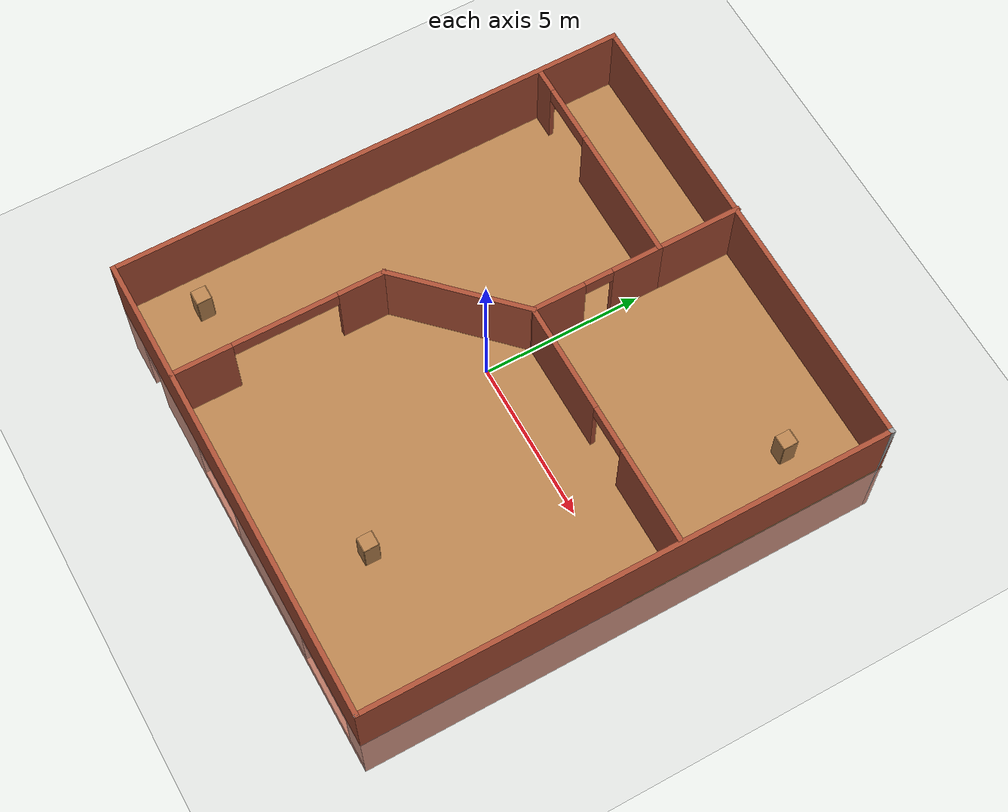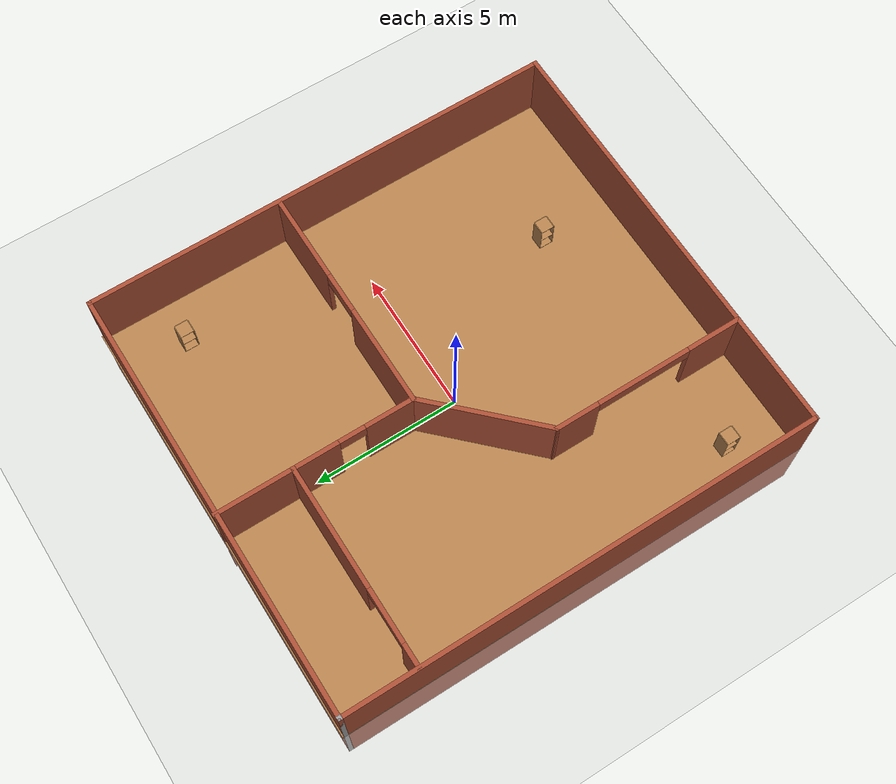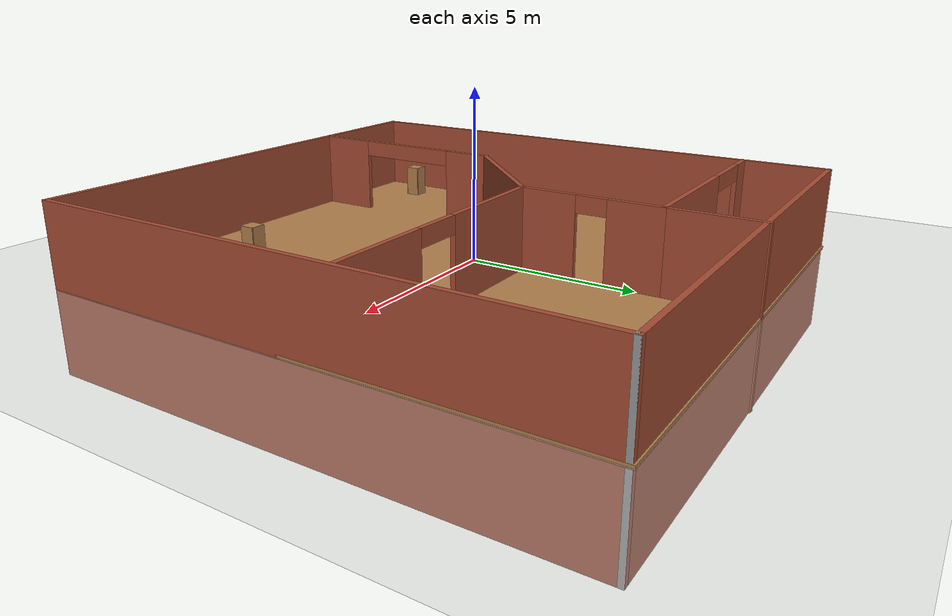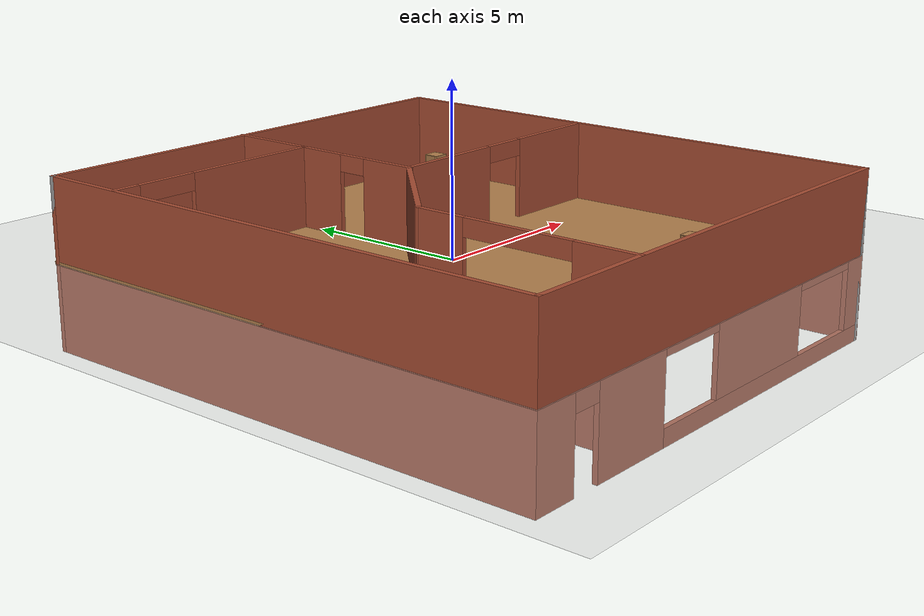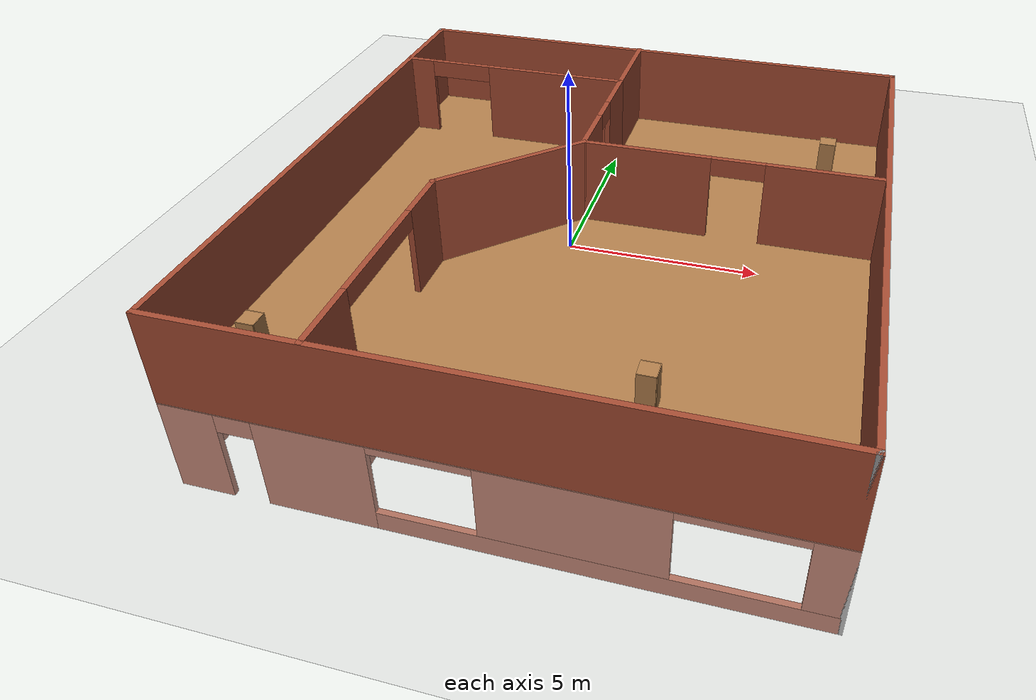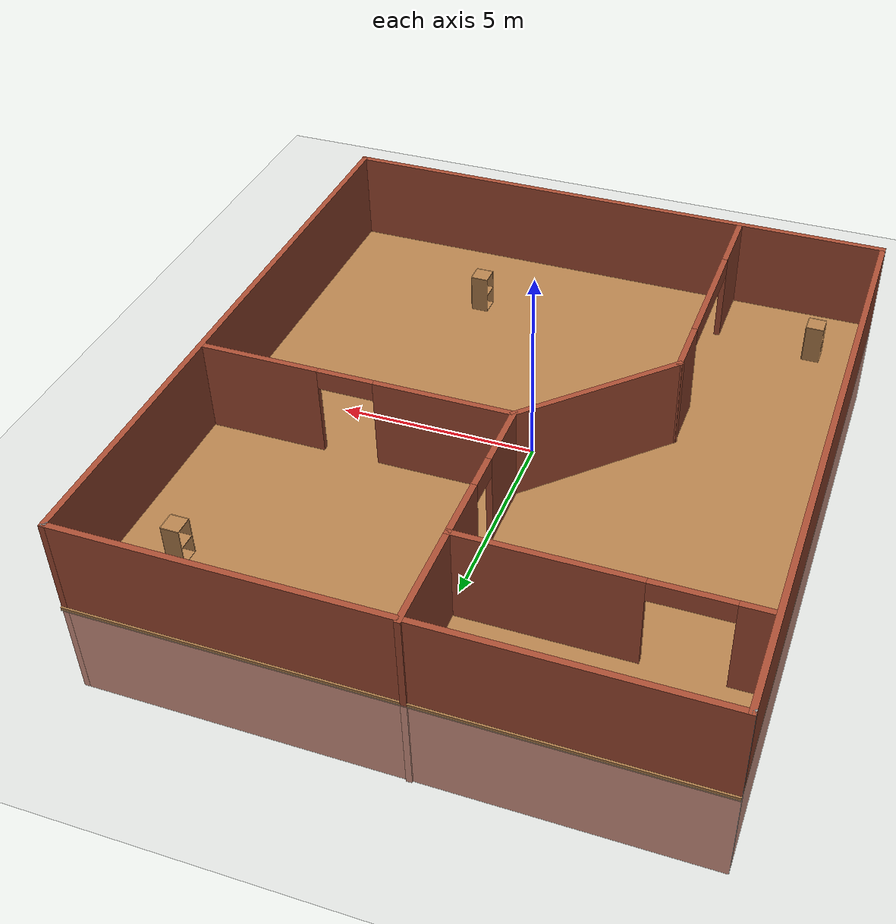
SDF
<sdf version="1.6">
 <world name="default">
  <light name="sun" type="directional">
   <pose>0 0 10 0 -0 0</pose>
   <diffuse>0.8 0.8 0.8 1</diffuse>
   <specular>0.2 0.2 0.2 1</specular>
   <attenuation>
    <range>1000</range>
    <constant>0.9</constant>
    <linear>0.01</linear>
    <quadratic>0.001</quadratic>
   </attenuation>
   <direction>-0.5 0.1 -0.9</direction>
  </light>
  <model name="ground_plane">
   <pose>0 0 -0.05 0 -0 0</pose>
   <static>1</static>
   <link name="link">
    <collision name="collision">
     <geometry><plane><normal>0 0 1</normal><size>100 100</size></plane></geometry>
     <surface>
      <contact><collide_bitmask>65535</collide_bitmask></contact>
      <friction><ode><mu>100</mu><mu2>50</mu2></ode></friction>
     </surface>
    </collision>
    <visual name="visual">
     <cast_shadows>0</cast_shadows>
     <geometry><plane><normal>0 0 1</normal><size>100 100</size></plane></geometry>
     <material>
      <script><uri>file://media/materials/scripts/gazebo.material</uri><name>Gazebo/Grey</name></script>
     </material>
    </visual>
   </link>
  </model>
  <gravity>0 0 -9.8</gravity>
  <magnetic_field>6e-06 2.3e-05 -4.2e-05</magnetic_field>
  <atmosphere type="adiabatic"/>
  <physics name="default_physics" default="0" type="ode">
   <max_step_size>0.001</max_step_size>
   <real_time_factor>1</real_time_factor>
   <real_time_update_rate>1000</real_time_update_rate>
  </physics>
  <scene><ambient>0.4 0.4 0.4 1</ambient><background>0.7 0.7 0.7 1</background><shadows>1</shadows></scene>
  <audio><device>default</device></audio>
  <spherical_coordinates>
   <surface_model>EARTH_WGS84</surface_model>
   <latitude_deg>0</latitude_deg>
   <longitude_deg>0</longitude_deg>
   <elevation>0</elevation>
   <heading_deg>0</heading_deg>
  </spherical_coordinates>
  <model name="RoboticsTrainHome">
   <pose>0.487938 0.029114 -2.6 0 -0 0</pose>
   <link name="Floor_0">
    <collision name="Floor_0_Collision">
     <geometry><box><size>15 16.5445 0.1</size></box></geometry>
     <pose>0 0 0.05 0 -0 0</pose>
    </collision>
    <visual name="Floor_0_Visual">
     <pose>0 0 0.05 0 -0 0</pose>
     <geometry><box><size>15 16.5445 0.1</size></box></geometry>
     <material>
      <script><uri>file://media/materials/scripts/gazebo.material</uri><name>Gazebo/Wood</name></script>
      <ambient>1 1 1 1</ambient>
     </material>
     <meta><layer>1</layer></meta>
    </visual>
    <pose>0 0 2.5 0 -0 0</pose>
   </link>
   <link name="Wall_10">
    <collision name="Wall_10_Collision">
     <geometry><box><size>0.15 0.15 2.5</size></box></geometry>
     <pose>0 0 1.25 0 -0 0</pose>
    </collision>
    <visual name="Wall_10_Visual">
     <pose>0 0 1.25 0 -0 0</pose>
     <geometry><box><size>0.15 0.15 2.5</size></box></geometry>
     <material>
      <script><uri>file://media/materials/scripts/gazebo.material</uri><name>Gazebo/Grey</name></script>
      <ambient>1 1 1 1</ambient>
     </material>
     <meta><layer>0</layer></meta>
    </visual>
    <pose>-7.425 8.15273 0 0 -0 0</pose>
   </link>
   <link name="Wall_11">
    <collision name="Wall_11_Collision">
     <geometry><box><size>16.5 0.15 2.5</size></box></geometry>
     <pose>0 0 1.25 0 -0 0</pose>
    </collision>
    <visual name="Wall_11_Visual">
     <pose>0 0 1.25 0 -0 0</pose>
     <geometry><box><size>16.5 0.15 2.5</size></box></geometry>
     <material>
      <script><uri>file://media/materials/scripts/gazebo.material</uri><name>Gazebo/Bricks</name></script>
      <ambient>1 1 1 1</ambient>
     </material>
     <meta><layer>0</layer></meta>
    </visual>
    <pose>-7.425 -0.022267 0 0 -0 -1.5708</pose>
   </link>
   <link name="Wall_13">
    <collision name="Wall_13_Collision">
     <geometry><box><size>2.75 0.15 2.5</size></box></geometry>
     <pose>0 0 1.25 0 -0 0</pose>
    </collision>
    <visual name="Wall_13_Visual">
     <pose>0 0 1.25 0 -0 0</pose>
     <geometry><box><size>2.75 0.15 2.5</size></box></geometry>
     <material>
      <script><uri>file://media/materials/scripts/gazebo.material</uri><name>Gazebo/Bricks</name></script>
      <ambient>1 1 1 1</ambient>
     </material>
     <meta><layer>0</layer></meta>
    </visual>
    <pose>-0.537233 6.89727 0 0 -0 -1.5708</pose>
   </link>
   <link name="Wall_20">
    <pose>-3.96223 5.59727 0 0 -0 3.14159</pose>
    <visual name="Wall_20_Visual_0">
     <pose>-0.811385 0 1.25 0 -0 0</pose>
     <geometry><box><size>5.37723 0.15 2.5</size></box></geometry>
     <material>
      <script><uri>file://media/materials/scripts/gazebo.material</uri><name>Gazebo/Bricks</name></script>
      <ambient>1 1 1 1</ambient>
     </material>
     <meta><layer>0</layer></meta>
    </visual>
    <collision name="Wall_20_Collision_0">
     <geometry><box><size>5.37723 0.15 2.5</size></box></geometry>
     <pose>-0.811385 0 1.25 0 -0 0</pose>
    </collision>
    <visual name="Wall_20_Visual_1">
     <pose>3.13862 0 1.25 0 -0 0</pose>
     <geometry><box><size>0.722771 0.15 2.5</size></box></geometry>
     <material>
      <script><uri>file://media/materials/scripts/gazebo.material</uri><name>Gazebo/Bricks</name></script>
      <ambient>1 1 1 1</ambient>
     </material>
     <meta><layer>0</layer></meta>
    </visual>
    <collision name="Wall_20_Collision_1">
     <geometry><box><size>0.722771 0.15 2.5</size></box></geometry>
     <pose>3.13862 0 1.25 0 -0 0</pose>
    </collision>
    <visual name="Wall_20_Visual_2">
     <pose>2.32723 0 2.25 0 -0 0</pose>
     <geometry><box><size>0.9 0.15 0.5</size></box></geometry>
     <material>
      <script><uri>file://media/materials/scripts/gazebo.material</uri><name>Gazebo/Bricks</name></script>
      <ambient>1 1 1 1</ambient>
     </material>
     <meta><layer>0</layer></meta>
    </visual>
    <collision name="Wall_20_Collision_2">
     <geometry><box><size>0.9 0.15 0.5</size></box></geometry>
     <pose>2.32723 0 2.25 0 -0 0</pose>
    </collision>
   </link>
   <link name="Wall_22">
    <pose>-0.537233 3.54727 0 0 -0 -1.5708</pose>
    <visual name="Wall_22_Visual_0">
     <pose>-0.760545 0 1.25 0 -0 0</pose>
     <geometry><box><size>2.72891 0.15 2.5</size></box></geometry>
     <material>
      <script><uri>file://media/materials/scripts/gazebo.material</uri><name>Gazebo/Bricks</name></script>
      <ambient>1 1 1 1</ambient>
     </material>
     <meta><layer>0</layer></meta>
    </visual>
    <collision name="Wall_22_Collision_0">
     <geometry><box><size>2.72891 0.15 2.5</size></box></geometry>
     <pose>-0.760545 0 1.25 0 -0 0</pose>
    </collision>
    <visual name="Wall_22_Visual_1">
     <pose>1.81445 0 1.25 0 -0 0</pose>
     <geometry><box><size>0.62109 0.15 2.5</size></box></geometry>
     <material>
      <script><uri>file://media/materials/scripts/gazebo.material</uri><name>Gazebo/Bricks</name></script>
      <ambient>1 1 1 1</ambient>
     </material>
     <meta><layer>0</layer></meta>
    </visual>
    <collision name="Wall_22_Collision_1">
     <geometry><box><size>0.62109 0.15 2.5</size></box></geometry>
     <pose>1.81445 0 1.25 0 -0 0</pose>
    </collision>
    <visual name="Wall_22_Visual_2">
     <pose>1.05391 0 2.25 0 -0 0</pose>
     <geometry><box><size>0.9 0.15 0.5</size></box></geometry>
     <material>
      <script><uri>file://media/materials/scripts/gazebo.material</uri><name>Gazebo/Bricks</name></script>
      <ambient>1 1 1 1</ambient>
     </material>
     <meta><layer>0</layer></meta>
    </visual>
    <collision name="Wall_22_Collision_2">
     <geometry><box><size>0.9 0.15 0.5</size></box></geometry>
     <pose>1.05391 0 2.25 0 -0 0</pose>
    </collision>
   </link>
   <link name="Wall_23">
    <collision name="Wall_23_Collision">
     <geometry><box><size>8 0.15 2.5</size></box></geometry>
     <pose>0 0 1.25 0 -0 0</pose>
    </collision>
    <visual name="Wall_23_Visual">
     <pose>0 0 1.25 0 -0 0</pose>
     <geometry><box><size>8 0.15 2.5</size></box></geometry>
     <material>
      <script><uri>file://media/materials/scripts/gazebo.material</uri><name>Gazebo/Bricks</name></script>
      <ambient>1 1 1 1</ambient>
     </material>
     <meta><layer>0</layer></meta>
    </visual>
    <pose>3.38777 1.49727 0 0 -0 0</pose>
   </link>
   <link name="Wall_25">
    <collision name="Wall_25_Collision">
     <geometry><box><size>4.5 0.15 2.5</size></box></geometry>
     <pose>0 0 1.25 0 -0 0</pose>
    </collision>
    <visual name="Wall_25_Visual">
     <pose>0 0 1.25 0 -0 0</pose>
     <geometry><box><size>4.5 0.15 2.5</size></box></geometry>
     <material>
      <script><uri>file://media/materials/scripts/gazebo.material</uri><name>Gazebo/Bricks</name></script>
      <ambient>1 1 1 1</ambient>
     </material>
     <meta><layer>0</layer></meta>
    </visual>
    <pose>-2.07519 -0.040689 0 0 -0 -2.35619</pose>
   </link>
   <link name="Wall_26">
    <pose>-3.61315 -4.87865 0 0 -0 -1.5708</pose>
    <visual name="Wall_26_Visual_0">
     <pose>-1.95738 0 1.25 0 -0 0</pose>
     <geometry><box><size>2.83524 0.15 2.5</size></box></geometry>
     <material>
      <script><uri>file://media/materials/scripts/gazebo.material</uri><name>Gazebo/Bricks</name></script>
      <ambient>1 1 1 1</ambient>
     </material>
     <meta><layer>0</layer></meta>
    </visual>
    <collision name="Wall_26_Collision_0">
     <geometry><box><size>2.83524 0.15 2.5</size></box></geometry>
     <pose>-1.95738 0 1.25 0 -0 0</pose>
    </collision>
    <visual name="Wall_26_Visual_1">
     <pose>1.86762 0 1.25 0 -0 0</pose>
     <geometry><box><size>3.01476 0.15 2.5</size></box></geometry>
     <material>
      <script><uri>file://media/materials/scripts/gazebo.material</uri><name>Gazebo/Bricks</name></script>
      <ambient>1 1 1 1</ambient>
     </material>
     <meta><layer>0</layer></meta>
    </visual>
    <collision name="Wall_26_Collision_1">
     <geometry><box><size>3.01476 0.15 2.5</size></box></geometry>
     <pose>1.86762 0 1.25 0 -0 0</pose>
    </collision>
    <visual name="Wall_26_Visual_2">
     <pose>-0.089756 0 2.25 0 -0 0</pose>
     <geometry><box><size>0.9 0.15 0.5</size></box></geometry>
     <material>
      <script><uri>file://media/materials/scripts/gazebo.material</uri><name>Gazebo/Bricks</name></script>
      <ambient>1 1 1 1</ambient>
     </material>
     <meta><layer>0</layer></meta>
    </visual>
    <collision name="Wall_26_Collision_2">
     <geometry><box><size>0.9 0.15 0.5</size></box></geometry>
     <pose>-0.089756 0 2.25 0 -0 0</pose>
    </collision>
   </link>
   <link name="Wall_28">
    <collision name="Wall_28_Collision">
     <geometry><box><size>15 0.15 2.5</size></box></geometry>
     <pose>0 0 1.25 0 -0 0</pose>
    </collision>
    <visual name="Wall_28_Visual">
     <pose>0 0 1.25 0 -0 0</pose>
     <geometry><box><size>15 0.15 2.5</size></box></geometry>
     <material>
      <script><uri>file://media/materials/scripts/gazebo.material</uri><name>Gazebo/Bricks</name></script>
      <ambient>1 1 1 1</ambient>
     </material>
     <meta><layer>1</layer></meta>
    </visual>
    <pose>0 -8.19727 2.5 0 -0 0</pose>
   </link>
   <link name="Wall_29">
    <collision name="Wall_29_Collision">
     <geometry><box><size>0.15 0.15 2.5</size></box></geometry>
     <pose>0 0 1.25 0 -0 0</pose>
    </collision>
    <visual name="Wall_29_Visual">
     <pose>0 0 1.25 0 -0 0</pose>
     <geometry><box><size>0.15 0.15 2.5</size></box></geometry>
     <material>
      <script><uri>file://media/materials/scripts/gazebo.material</uri><name>Gazebo/Grey</name></script>
      <ambient>1 1 1 1</ambient>
     </material>
     <meta><layer>1</layer></meta>
    </visual>
    <pose>7.425 -8.19727 2.5 0 -0 0</pose>
   </link>
   <link name="Wall_30">
    <collision name="Wall_30_Collision">
     <geometry><box><size>16.5 0.15 2.5</size></box></geometry>
     <pose>0 0 1.25 0 -0 0</pose>
    </collision>
    <visual name="Wall_30_Visual">
     <pose>0 0 1.25 0 -0 0</pose>
     <geometry><box><size>16.5 0.15 2.5</size></box></geometry>
     <material>
      <script><uri>file://media/materials/scripts/gazebo.material</uri><name>Gazebo/Bricks</name></script>
      <ambient>1 1 1 1</ambient>
     </material>
     <meta><layer>1</layer></meta>
    </visual>
    <pose>7.425 -0.022267 2.5 0 -0 1.5708</pose>
   </link>
   <link name="Wall_31">
    <collision name="Wall_31_Collision">
     <geometry><box><size>0.15 0.15 2.5</size></box></geometry>
     <pose>0 0 1.25 0 -0 0</pose>
    </collision>
    <visual name="Wall_31_Visual">
     <pose>0 0 1.25 0 -0 0</pose>
     <geometry><box><size>0.15 0.15 2.5</size></box></geometry>
     <material>
      <script><uri>file://media/materials/scripts/gazebo.material</uri><name>Gazebo/Grey</name></script>
      <ambient>1 1 1 1</ambient>
     </material>
     <meta><layer>1</layer></meta>
    </visual>
    <pose>7.425 8.15273 2.5 0 -0 0</pose>
   </link>
   <link name="Wall_32">
    <collision name="Wall_32_Collision">
     <geometry><box><size>15 0.15 2.5</size></box></geometry>
     <pose>0 0 1.25 0 -0 0</pose>
    </collision>
    <visual name="Wall_32_Visual">
     <pose>0 0 1.25 0 -0 0</pose>
     <geometry><box><size>15 0.15 2.5</size></box></geometry>
     <material>
      <script><uri>file://media/materials/scripts/gazebo.material</uri><name>Gazebo/Bricks</name></script>
      <ambient>1 1 1 1</ambient>
     </material>
     <meta><layer>1</layer></meta>
    </visual>
    <pose>0 8.15273 2.5 0 -0 3.14159</pose>
   </link>
   <link name="Wall_33">
    <collision name="Wall_33_Collision">
     <geometry><box><size>0.15 0.15 2.5</size></box></geometry>
     <pose>0 0 1.25 0 -0 0</pose>
    </collision>
    <visual name="Wall_33_Visual">
     <pose>0 0 1.25 0 -0 0</pose>
     <geometry><box><size>0.15 0.15 2.5</size></box></geometry>
     <material>
      <script><uri>file://media/materials/scripts/gazebo.material</uri><name>Gazebo/Grey</name></script>
      <ambient>1 1 1 1</ambient>
     </material>
     <meta><layer>1</layer></meta>
    </visual>
    <pose>-7.425 8.15273 2.5 0 -0 0</pose>
   </link>
   <link name="Wall_34">
    <collision name="Wall_34_Collision">
     <geometry><box><size>16.5 0.15 2.5</size></box></geometry>
     <pose>0 0 1.25 0 -0 0</pose>
    </collision>
    <visual name="Wall_34_Visual">
     <pose>0 0 1.25 0 -0 0</pose>
     <geometry><box><size>16.5 0.15 2.5</size></box></geometry>
     <material>
      <script><uri>file://media/materials/scripts/gazebo.material</uri><name>Gazebo/Bricks</name></script>
      <ambient>1 1 1 1</ambient>
     </material>
     <meta><layer>1</layer></meta>
    </visual>
    <pose>-7.425 -0.022267 2.5 0 -0 -1.5708</pose>
   </link>
   <link name="Wall_35">
    <collision name="Wall_35_Collision">
     <geometry><box><size>2.75 0.15 2.5</size></box></geometry>
     <pose>0 0 1.25 0 -0 0</pose>
    </collision>
    <visual name="Wall_35_Visual">
     <pose>0 0 1.25 0 -0 0</pose>
     <geometry><box><size>2.75 0.15 2.5</size></box></geometry>
     <material>
      <script><uri>file://media/materials/scripts/gazebo.material</uri><name>Gazebo/Bricks</name></script>
      <ambient>1 1 1 1</ambient>
     </material>
     <meta><layer>1</layer></meta>
    </visual>
    <pose>-0.537233 6.89727 2.5 0 -0 -1.5708</pose>
   </link>
   <link name="Wall_36">
    <pose>-3.96223 5.59727 2.5 0 -0 3.14159</pose>
    <visual name="Wall_36_Visual_0">
     <pose>-1.35419 0 1.25 0 -0 0</pose>
     <geometry><box><size>4.29162 0.15 2.5</size></box></geometry>
     <material>
      <script><uri>file://media/materials/scripts/gazebo.material</uri><name>Gazebo/Bricks</name></script>
      <ambient>1 1 1 1</ambient>
     </material>
     <meta><layer>1</layer></meta>
    </visual>
    <collision name="Wall_36_Collision_0">
     <geometry><box><size>4.29162 0.15 2.5</size></box></geometry>
     <pose>-1.35419 0 1.25 0 -0 0</pose>
    </collision>
    <visual name="Wall_36_Visual_1">
     <pose>3.07617 0 1.25 0 -0 0</pose>
     <geometry><box><size>0.847664 0.15 2.5</size></box></geometry>
     <material>
      <script><uri>file://media/materials/scripts/gazebo.material</uri><name>Gazebo/Bricks</name></script>
      <ambient>1 1 1 1</ambient>
     </material>
     <meta><layer>1</layer></meta>
    </visual>
    <collision name="Wall_36_Collision_1">
     <geometry><box><size>0.847664 0.15 2.5</size></box></geometry>
     <pose>3.07617 0 1.25 0 -0 0</pose>
    </collision>
    <visual name="Wall_36_Visual_2">
     <pose>1.72198 0 2.25 0 -0 0</pose>
     <geometry><box><size>1.86072 0.15 0.5</size></box></geometry>
     <material>
      <script><uri>file://media/materials/scripts/gazebo.material</uri><name>Gazebo/Bricks</name></script>
      <ambient>1 1 1 1</ambient>
     </material>
     <meta><layer>1</layer></meta>
    </visual>
    <collision name="Wall_36_Collision_2">
     <geometry><box><size>1.86072 0.15 0.5</size></box></geometry>
     <pose>1.72198 0 2.25 0 -0 0</pose>
    </collision>
   </link>
   <link name="Wall_37">
    <pose>-0.537233 3.54727 2.5 0 -0 -1.5708</pose>
    <visual name="Wall_37_Visual_0">
     <pose>-1.31776 0 1.25 0 -0 0</pose>
     <geometry><box><size>1.61448 0.15 2.5</size></box></geometry>
     <material>
      <script><uri>file://media/materials/scripts/gazebo.material</uri><name>Gazebo/Bricks</name></script>
      <ambient>1 1 1 1</ambient>
     </material>
     <meta><layer>1</layer></meta>
    </visual>
    <collision name="Wall_37_Collision_0">
     <geometry><box><size>1.61448 0.15 2.5</size></box></geometry>
     <pose>-1.31776 0 1.25 0 -0 0</pose>
    </collision>
    <visual name="Wall_37_Visual_1">
     <pose>1.25724 0 1.25 0 -0 0</pose>
     <geometry><box><size>1.73552 0.15 2.5</size></box></geometry>
     <material>
      <script><uri>file://media/materials/scripts/gazebo.material</uri><name>Gazebo/Bricks</name></script>
      <ambient>1 1 1 1</ambient>
     </material>
     <meta><layer>1</layer></meta>
    </visual>
    <collision name="Wall_37_Collision_1">
     <geometry><box><size>1.73552 0.15 2.5</size></box></geometry>
     <pose>1.25724 0 1.25 0 -0 0</pose>
    </collision>
    <visual name="Wall_37_Visual_2">
     <pose>-0.060524 0 2.25 0 -0 0</pose>
     <geometry><box><size>0.9 0.15 0.5</size></box></geometry>
     <material>
      <script><uri>file://media/materials/scripts/gazebo.material</uri><name>Gazebo/Bricks</name></script>
      <ambient>1 1 1 1</ambient>
     </material>
     <meta><layer>1</layer></meta>
    </visual>
    <collision name="Wall_37_Collision_2">
     <geometry><box><size>0.9 0.15 0.5</size></box></geometry>
     <pose>-0.060524 0 2.25 0 -0 0</pose>
    </collision>
   </link>
   <link name="Wall_38">
    <pose>3.38777 1.49727 2.5 0 -0 0</pose>
    <visual name="Wall_38_Visual_0">
     <pose>-2.2312 0 1.25 0 -0 0</pose>
     <geometry><box><size>3.5376 0.15 2.5</size></box></geometry>
     <material>
      <script><uri>file://media/materials/scripts/gazebo.material</uri><name>Gazebo/Bricks</name></script>
      <ambient>1 1 1 1</ambient>
     </material>
     <meta><layer>1</layer></meta>
    </visual>
    <collision name="Wall_38_Collision_0">
     <geometry><box><size>3.5376 0.15 2.5</size></box></geometry>
     <pose>-2.2312 0 1.25 0 -0 0</pose>
    </collision>
    <visual name="Wall_38_Visual_1">
     <pose>2.47819 0 1.25 0 -0 0</pose>
     <geometry><box><size>3.04361 0.15 2.5</size></box></geometry>
     <material>
      <script><uri>file://media/materials/scripts/gazebo.material</uri><name>Gazebo/Bricks</name></script>
      <ambient>1 1 1 1</ambient>
     </material>
     <meta><layer>1</layer></meta>
    </visual>
    <collision name="Wall_38_Collision_1">
     <geometry><box><size>3.04361 0.15 2.5</size></box></geometry>
     <pose>2.47819 0 1.25 0 -0 0</pose>
    </collision>
    <visual name="Wall_38_Visual_2">
     <pose>0.246996 0 2.25 0 -0 0</pose>
     <geometry><box><size>1.41879 0.15 0.5</size></box></geometry>
     <material>
      <script><uri>file://media/materials/scripts/gazebo.material</uri><name>Gazebo/Bricks</name></script>
      <ambient>1 1 1 1</ambient>
     </material>
     <meta><layer>1</layer></meta>
    </visual>
    <collision name="Wall_38_Collision_2">
     <geometry><box><size>1.41879 0.15 0.5</size></box></geometry>
     <pose>0.246996 0 2.25 0 -0 0</pose>
    </collision>
   </link>
   <link name="Wall_39">
    <collision name="Wall_39_Collision">
     <geometry><box><size>4.5 0.15 2.5</size></box></geometry>
     <pose>0 0 1.25 0 -0 0</pose>
    </collision>
    <visual name="Wall_39_Visual">
     <pose>0 0 1.25 0 -0 0</pose>
     <geometry><box><size>4.5 0.15 2.5</size></box></geometry>
     <material>
      <script><uri>file://media/materials/scripts/gazebo.material</uri><name>Gazebo/Bricks</name></script>
      <ambient>1 1 1 1</ambient>
     </material>
     <meta><layer>1</layer></meta>
    </visual>
    <pose>-2.07519 -0.040689 2.5 0 -0 -2.35619</pose>
   </link>
   <link name="Wall_4">
    <pose>0 -8.19727 0 0 -0 0</pose>
    <visual name="Wall_4_Visual_0">
     <pose>-6.8123 0 1.25 0 -0 0</pose>
     <geometry><box><size>1.3754 0.15 2.5</size></box></geometry>
     <material>
      <script><uri>file://media/materials/scripts/gazebo.material</uri><name>Gazebo/Bricks</name></script>
      <ambient>1 1 1 1</ambient>
     </material>
     <meta><layer>0</layer></meta>
    </visual>
    <collision name="Wall_4_Collision_0">
     <geometry><box><size>1.3754 0.15 2.5</size></box></geometry>
     <pose>-6.8123 0 1.25 0 -0 0</pose>
    </collision>
    <visual name="Wall_4_Visual_1">
     <pose>-3.88179 0 1.25 0 -0 0</pose>
     <geometry><box><size>2.68563 0.15 2.5</size></box></geometry>
     <material>
      <script><uri>file://media/materials/scripts/gazebo.material</uri><name>Gazebo/Bricks</name></script>
      <ambient>1 1 1 1</ambient>
     </material>
     <meta><layer>0</layer></meta>
    </visual>
    <collision name="Wall_4_Collision_1">
     <geometry><box><size>2.68563 0.15 2.5</size></box></geometry>
     <pose>-3.88179 0 1.25 0 -0 0</pose>
    </collision>
    <visual name="Wall_4_Visual_2">
     <pose>2.48051 0 0.25 0 -0 0</pose>
     <geometry><box><size>10.039 0.15 0.5</size></box></geometry>
     <material>
      <script><uri>file://media/materials/scripts/gazebo.material</uri><name>Gazebo/Bricks</name></script>
      <ambient>1 1 1 1</ambient>
     </material>
     <meta><layer>0</layer></meta>
    </visual>
    <collision name="Wall_4_Collision_2">
     <geometry><box><size>10.039 0.15 0.5</size></box></geometry>
     <pose>2.48051 0 0.25 0 -0 0</pose>
    </collision>
    <visual name="Wall_4_Visual_3">
     <pose>1.89572 0 1.5 0 -0 0</pose>
     <geometry><box><size>4.15739 0.15 2</size></box></geometry>
     <material>
      <script><uri>file://media/materials/scripts/gazebo.material</uri><name>Gazebo/Bricks</name></script>
      <ambient>1 1 1 1</ambient>
     </material>
     <meta><layer>0</layer></meta>
    </visual>
    <collision name="Wall_4_Collision_3">
     <geometry><box><size>4.15739 0.15 2</size></box></geometry>
     <pose>1.89572 0 1.5 0 -0 0</pose>
    </collision>
    <visual name="Wall_4_Visual_4">
     <pose>7.06921 0 1.5 0 -0 0</pose>
     <geometry><box><size>0.861587 0.15 2</size></box></geometry>
     <material>
      <script><uri>file://media/materials/scripts/gazebo.material</uri><name>Gazebo/Bricks</name></script>
      <ambient>1 1 1 1</ambient>
     </material>
     <meta><layer>0</layer></meta>
    </visual>
    <collision name="Wall_4_Collision_4">
     <geometry><box><size>0.861587 0.15 2</size></box></geometry>
     <pose>7.06921 0 1.5 0 -0 0</pose>
    </collision>
    <visual name="Wall_4_Visual_5">
     <pose>-5.6746 0 2.25 0 -0 0</pose>
     <geometry><box><size>0.9 0.15 0.5</size></box></geometry>
     <material>
      <script><uri>file://media/materials/scripts/gazebo.material</uri><name>Gazebo/Bricks</name></script>
      <ambient>1 1 1 1</ambient>
     </material>
     <meta><layer>0</layer></meta>
    </visual>
    <collision name="Wall_4_Collision_5">
     <geometry><box><size>0.9 0.15 0.5</size></box></geometry>
     <pose>-5.6746 0 2.25 0 -0 0</pose>
    </collision>
    <visual name="Wall_4_Visual_6">
     <pose>-1.36098 0 2.4 0 -0 0</pose>
     <geometry><box><size>2.356 0.15 0.2</size></box></geometry>
     <material>
      <script><uri>file://media/materials/scripts/gazebo.material</uri><name>Gazebo/Bricks</name></script>
      <ambient>1 1 1 1</ambient>
     </material>
     <meta><layer>0</layer></meta>
    </visual>
    <collision name="Wall_4_Collision_6">
     <geometry><box><size>2.356 0.15 0.2</size></box></geometry>
     <pose>-1.36098 0 2.4 0 -0 0</pose>
    </collision>
    <visual name="Wall_4_Visual_7">
     <pose>5.30641 0 2.4 0 -0 0</pose>
     <geometry><box><size>2.664 0.15 0.2</size></box></geometry>
     <material>
      <script><uri>file://media/materials/scripts/gazebo.material</uri><name>Gazebo/Bricks</name></script>
      <ambient>1 1 1 1</ambient>
     </material>
     <meta><layer>0</layer></meta>
    </visual>
    <collision name="Wall_4_Collision_7">
     <geometry><box><size>2.664 0.15 0.2</size></box></geometry>
     <pose>5.30641 0 2.4 0 -0 0</pose>
    </collision>
   </link>
   <link name="Wall_40">
    <pose>-3.61315 -4.87865 2.5 0 -0 -1.5708</pose>
    <visual name="Wall_40_Visual_0">
     <pose>-2.59725 0 1.25 0 -0 0</pose>
     <geometry><box><size>1.55549 0.15 2.5</size></box></geometry>
     <material>
      <script><uri>file://media/materials/scripts/gazebo.material</uri><name>Gazebo/Bricks</name></script>
      <ambient>1 1 1 1</ambient>
     </material>
     <meta><layer>1</layer></meta>
    </visual>
    <collision name="Wall_40_Collision_0">
     <geometry><box><size>1.55549 0.15 2.5</size></box></geometry>
     <pose>-2.59725 0 1.25 0 -0 0</pose>
    </collision>
    <visual name="Wall_40_Visual_1">
     <pose>2.41904 0 1.25 0 -0 0</pose>
     <geometry><box><size>1.91193 0.15 2.5</size></box></geometry>
     <material>
      <script><uri>file://media/materials/scripts/gazebo.material</uri><name>Gazebo/Bricks</name></script>
      <ambient>1 1 1 1</ambient>
     </material>
     <meta><layer>1</layer></meta>
    </visual>
    <collision name="Wall_40_Collision_1">
     <geometry><box><size>1.91193 0.15 2.5</size></box></geometry>
     <pose>2.41904 0 1.25 0 -0 0</pose>
    </collision>
    <visual name="Wall_40_Visual_2">
     <pose>-0.178216 0 2.25 0 -0 0</pose>
     <geometry><box><size>3.28258 0.15 0.5</size></box></geometry>
     <material>
      <script><uri>file://media/materials/scripts/gazebo.material</uri><name>Gazebo/Bricks</name></script>
      <ambient>1 1 1 1</ambient>
     </material>
     <meta><layer>1</layer></meta>
    </visual>
    <collision name="Wall_40_Collision_2">
     <geometry><box><size>3.28258 0.15 0.5</size></box></geometry>
     <pose>-0.178216 0 2.25 0 -0 0</pose>
    </collision>
   </link>
   <link name="Wall_5">
    <collision name="Wall_5_Collision">
     <geometry><box><size>0.15 0.15 2.5</size></box></geometry>
     <pose>0 0 1.25 0 -0 0</pose>
    </collision>
    <visual name="Wall_5_Visual">
     <pose>0 0 1.25 0 -0 0</pose>
     <geometry><box><size>0.15 0.15 2.5</size></box></geometry>
     <material>
      <script><uri>file://media/materials/scripts/gazebo.material</uri><name>Gazebo/Grey</name></script>
      <ambient>1 1 1 1</ambient>
     </material>
     <meta><layer>0</layer></meta>
    </visual>
    <pose>7.425 -8.19727 0 0 -0 0</pose>
   </link>
   <link name="Wall_7">
    <collision name="Wall_7_Collision">
     <geometry><box><size>16.5 0.15 2.5</size></box></geometry>
     <pose>0 0 1.25 0 -0 0</pose>
    </collision>
    <visual name="Wall_7_Visual">
     <pose>0 0 1.25 0 -0 0</pose>
     <geometry><box><size>16.5 0.15 2.5</size></box></geometry>
     <material>
      <script><uri>file://media/materials/scripts/gazebo.material</uri><name>Gazebo/Bricks</name></script>
      <ambient>1 1 1 1</ambient>
     </material>
     <meta><layer>0</layer></meta>
    </visual>
    <pose>7.425 -0.022267 0 0 -0 1.5708</pose>
   </link>
   <link name="Wall_8">
    <collision name="Wall_8_Collision">
     <geometry><box><size>0.15 0.15 2.5</size></box></geometry>
     <pose>0 0 1.25 0 -0 0</pose>
    </collision>
    <visual name="Wall_8_Visual">
     <pose>0 0 1.25 0 -0 0</pose>
     <geometry><box><size>0.15 0.15 2.5</size></box></geometry>
     <material>
      <script><uri>file://media/materials/scripts/gazebo.material</uri><name>Gazebo/Grey</name></script>
      <ambient>1 1 1 1</ambient>
     </material>
     <meta><layer>0</layer></meta>
    </visual>
    <pose>7.425 8.15273 0 0 -0 0</pose>
   </link>
   <link name="Wall_9">
    <collision name="Wall_9_Collision">
     <geometry><box><size>15 0.15 2.5</size></box></geometry>
     <pose>0 0 1.25 0 -0 0</pose>
    </collision>
    <visual name="Wall_9_Visual">
     <pose>0 0 1.25 0 -0 0</pose>
     <geometry><box><size>15 0.15 2.5</size></box></geometry>
     <material>
      <script><uri>file://media/materials/scripts/gazebo.material</uri><name>Gazebo/Bricks</name></script>
      <ambient>1 1 1 1</ambient>
     </material>
     <meta><layer>0</layer></meta>
    </visual>
    <pose>0 8.15273 0 0 -0 3.14159</pose>
   </link>
   <static>1</static>
  </model>
  <model name="cabinet">
   <static>1</static>
   <link name="cabinet_bottom_plate">
    <inertial>
     <pose>0 0 -1 0 -0 0</pose>
     <inertia><ixx>2.05</ixx><ixy>0</ixy><ixz>0</ixz><iyy>2.05</iyy><iyz>0</iyz><izz>2.05</izz></inertia>
     <mass>25</mass>
    </inertial>
    <collision name="cabinet_bottom_plate_geom">
     <pose>0 0 0.01 0 -0 0</pose>
     <geometry><box><size>0.45 0.45 0.02</size></box></geometry>
    </collision>
    <visual name="cabinet_bottom_plate_geom_visual">
     <pose>0 0 0.01 0 -0 0</pose>
     <geometry><box><size>0.45 0.45 0.02</size></box></geometry>
     <material>
      <script><uri>file://media/materials/scripts/gazebo.material</uri><name>Gazebo/Wood</name></script>
     </material>
    </visual>
    <collision name="cabinet_bottom_plate_geom_cabinet_back_plate">
     <pose>0.235 0 0.51 0 -0 0</pose>
     <geometry><box><size>0.02 0.45 1.02</size></box></geometry>
    </collision>
    <visual name="cabinet_bottom_plate_geom_cabinet_back_plate_visual">
     <pose>0.235 0 0.51 0 -0 0</pose>
     <geometry><box><size>0.02 0.45 1.02</size></box></geometry>
     <material>
      <script><uri>file://media/materials/scripts/gazebo.material</uri><name>Gazebo/Wood</name></script>
     </material>
    </visual>
    <collision name="cabinet_bottom_plate_geom_cabinet_left_plate">
     <pose>0 0.235 0.51 0 -0 0</pose>
     <geometry><box><size>0.45 0.02 1.02</size></box></geometry>
    </collision>
    <visual name="cabinet_bottom_plate_geom_cabinet_left_plate_visual">
     <pose>0 0.235 0.51 0 -0 0</pose>
     <geometry><box><size>0.45 0.02 1.02</size></box></geometry>
     <material>
      <script><uri>file://media/materials/scripts/gazebo.material</uri><name>Gazebo/Wood</name></script>
     </material>
    </visual>
    <collision name="cabinet_bottom_plate_geom_cabinet_middle_plate">
     <pose>0 0 0.51 0 -0 0</pose>
     <geometry><box><size>0.45 0.45 0.02</size></box></geometry>
    </collision>
    <visual name="cabinet_bottom_plate_geom_cabinet_middle_plate_visual">
     <pose>0 0 0.51 0 -0 0</pose>
     <geometry><box><size>0.45 0.45 0.02</size></box></geometry>
     <material>
      <script><uri>file://media/materials/scripts/gazebo.material</uri><name>Gazebo/Wood</name></script>
     </material>
    </visual>
    <collision name="cabinet_bottom_plate_geom_cabinet_right_plate">
     <pose>0 -0.235 0.51 0 -0 0</pose>
     <geometry><box><size>0.45 0.02 1.02</size></box></geometry>
    </collision>
    <visual name="cabinet_bottom_plate_geom_cabinet_right_plate_visual">
     <pose>0 -0.235 0.51 0 -0 0</pose>
     <geometry><box><size>0.45 0.02 1.02</size></box></geometry>
     <material>
      <script><uri>file://media/materials/scripts/gazebo.material</uri><name>Gazebo/Wood</name></script>
     </material>
    </visual>
    <collision name="cabinet_bottom_plate_geom_cabinet_top_plate">
     <pose>0 0 1.01 0 -0 0</pose>
     <geometry><box><size>0.45 0.45 0.02</size></box></geometry>
    </collision>
    <visual name="cabinet_bottom_plate_geom_cabinet_top_plate_visual">
     <pose>0 0 1.01 0 -0 0</pose>
     <geometry><box><size>0.45 0.45 0.02</size></box></geometry>
     <material>
      <script><uri>file://media/materials/scripts/gazebo.material</uri><name>Gazebo/Wood</name></script>
     </material>
    </visual>
   </link>
   <pose>3.33664 -5.53484 0 0 -0 0</pose>
  </model>
  <model name="cabinet_0">
   <static>1</static>
   <link name="cabinet_bottom_plate">
    <inertial>
     <pose>0 0 -1 0 -0 0</pose>
     <inertia><ixx>2.05</ixx><ixy>0</ixy><ixz>0</ixz><iyy>2.05</iyy><iyz>0</iyz><izz>2.05</izz></inertia>
     <mass>25</mass>
    </inertial>
    <collision name="cabinet_bottom_plate_geom">
     <pose>0 0 0.01 0 -0 0</pose>
     <geometry><box><size>0.45 0.45 0.02</size></box></geometry>
    </collision>
    <visual name="cabinet_bottom_plate_geom_visual">
     <pose>0 0 0.01 0 -0 0</pose>
     <geometry><box><size>0.45 0.45 0.02</size></box></geometry>
     <material>
      <script><uri>file://media/materials/scripts/gazebo.material</uri><name>Gazebo/Wood</name></script>
     </material>
    </visual>
    <collision name="cabinet_bottom_plate_geom_cabinet_back_plate">
     <pose>0.235 0 0.51 0 -0 0</pose>
     <geometry><box><size>0.02 0.45 1.02</size></box></geometry>
    </collision>
    <visual name="cabinet_bottom_plate_geom_cabinet_back_plate_visual">
     <pose>0.235 0 0.51 0 -0 0</pose>
     <geometry><box><size>0.02 0.45 1.02</size></box></geometry>
     <material>
      <script><uri>file://media/materials/scripts/gazebo.material</uri><name>Gazebo/Wood</name></script>
     </material>
    </visual>
    <collision name="cabinet_bottom_plate_geom_cabinet_left_plate">
     <pose>0 0.235 0.51 0 -0 0</pose>
     <geometry><box><size>0.45 0.02 1.02</size></box></geometry>
    </collision>
    <visual name="cabinet_bottom_plate_geom_cabinet_left_plate_visual">
     <pose>0 0.235 0.51 0 -0 0</pose>
     <geometry><box><size>0.45 0.02 1.02</size></box></geometry>
     <material>
      <script><uri>file://media/materials/scripts/gazebo.material</uri><name>Gazebo/Wood</name></script>
     </material>
    </visual>
    <collision name="cabinet_bottom_plate_geom_cabinet_middle_plate">
     <pose>0 0 0.51 0 -0 0</pose>
     <geometry><box><size>0.45 0.45 0.02</size></box></geometry>
    </collision>
    <visual name="cabinet_bottom_plate_geom_cabinet_middle_plate_visual">
     <pose>0 0 0.51 0 -0 0</pose>
     <geometry><box><size>0.45 0.45 0.02</size></box></geometry>
     <material>
      <script><uri>file://media/materials/scripts/gazebo.material</uri><name>Gazebo/Wood</name></script>
     </material>
    </visual>
    <collision name="cabinet_bottom_plate_geom_cabinet_right_plate">
     <pose>0 -0.235 0.51 0 -0 0</pose>
     <geometry><box><size>0.45 0.02 1.02</size></box></geometry>
    </collision>
    <visual name="cabinet_bottom_plate_geom_cabinet_right_plate_visual">
     <pose>0 -0.235 0.51 0 -0 0</pose>
     <geometry><box><size>0.45 0.02 1.02</size></box></geometry>
     <material>
      <script><uri>file://media/materials/scripts/gazebo.material</uri><name>Gazebo/Wood</name></script>
     </material>
    </visual>
    <collision name="cabinet_bottom_plate_geom_cabinet_top_plate">
     <pose>0 0 1.01 0 -0 0</pose>
     <geometry><box><size>0.45 0.45 0.02</size></box></geometry>
    </collision>
    <visual name="cabinet_bottom_plate_geom_cabinet_top_plate_visual">
     <pose>0 0 1.01 0 -0 0</pose>
     <geometry><box><size>0.45 0.45 0.02</size></box></geometry>
     <material>
      <script><uri>file://media/materials/scripts/gazebo.material</uri><name>Gazebo/Wood</name></script>
     </material>
    </visual>
   </link>
   <pose>-5.72947 -6.2141 0 0 -0 0</pose>
  </model>
  <model name="cabinet_1">
   <static>1</static>
   <link name="cabinet_bottom_plate">
    <inertial>
     <pose>0 0 -1 0 -0 0</pose>
     <inertia><ixx>2.05</ixx><ixy>0</ixy><ixz>0</ixz><iyy>2.05</iyy><iyz>0</iyz><izz>2.05</izz></inertia>
     <mass>25</mass>
    </inertial>
    <collision name="cabinet_bottom_plate_geom">
     <pose>0 0 0.01 0 -0 0</pose>
     <geometry><box><size>0.45 0.45 0.02</size></box></geometry>
    </collision>
    <visual name="cabinet_bottom_plate_geom_visual">
     <pose>0 0 0.01 0 -0 0</pose>
     <geometry><box><size>0.45 0.45 0.02</size></box></geometry>
     <material>
      <script><uri>file://media/materials/scripts/gazebo.material</uri><name>Gazebo/Wood</name></script>
     </material>
    </visual>
    <collision name="cabinet_bottom_plate_geom_cabinet_back_plate">
     <pose>0.235 0 0.51 0 -0 0</pose>
     <geometry><box><size>0.02 0.45 1.02</size></box></geometry>
    </collision>
    <visual name="cabinet_bottom_plate_geom_cabinet_back_plate_visual">
     <pose>0.235 0 0.51 0 -0 0</pose>
     <geometry><box><size>0.02 0.45 1.02</size></box></geometry>
     <material>
      <script><uri>file://media/materials/scripts/gazebo.material</uri><name>Gazebo/Wood</name></script>
     </material>
    </visual>
    <collision name="cabinet_bottom_plate_geom_cabinet_left_plate">
     <pose>0 0.235 0.51 0 -0 0</pose>
     <geometry><box><size>0.45 0.02 1.02</size></box></geometry>
    </collision>
    <visual name="cabinet_bottom_plate_geom_cabinet_left_plate_visual">
     <pose>0 0.235 0.51 0 -0 0</pose>
     <geometry><box><size>0.45 0.02 1.02</size></box></geometry>
     <material>
      <script><uri>file://media/materials/scripts/gazebo.material</uri><name>Gazebo/Wood</name></script>
     </material>
    </visual>
    <collision name="cabinet_bottom_plate_geom_cabinet_middle_plate">
     <pose>0 0 0.51 0 -0 0</pose>
     <geometry><box><size>0.45 0.45 0.02</size></box></geometry>
    </collision>
    <visual name="cabinet_bottom_plate_geom_cabinet_middle_plate_visual">
     <pose>0 0 0.51 0 -0 0</pose>
     <geometry><box><size>0.45 0.45 0.02</size></box></geometry>
     <material>
      <script><uri>file://media/materials/scripts/gazebo.material</uri><name>Gazebo/Wood</name></script>
     </material>
    </visual>
    <collision name="cabinet_bottom_plate_geom_cabinet_right_plate">
     <pose>0 -0.235 0.51 0 -0 0</pose>
     <geometry><box><size>0.45 0.02 1.02</size></box></geometry>
    </collision>
    <visual name="cabinet_bottom_plate_geom_cabinet_right_plate_visual">
     <pose>0 -0.235 0.51 0 -0 0</pose>
     <geometry><box><size>0.45 0.02 1.02</size></box></geometry>
     <material>
      <script><uri>file://media/materials/scripts/gazebo.material</uri><name>Gazebo/Wood</name></script>
     </material>
    </visual>
    <collision name="cabinet_bottom_plate_geom_cabinet_top_plate">
     <pose>0 0 1.01 0 -0 0</pose>
     <geometry><box><size>0.45 0.45 0.02</size></box></geometry>
    </collision>
    <visual name="cabinet_bottom_plate_geom_cabinet_top_plate_visual">
     <pose>0 0 1.01 0 -0 0</pose>
     <geometry><box><size>0.45 0.45 0.02</size></box></geometry>
     <material>
      <script><uri>file://media/materials/scripts/gazebo.material</uri><name>Gazebo/Wood</name></script>
     </material>
    </visual>
   </link>
   <pose>6.29553 6.04058 0 0 -0 0</pose>
  </model>
 </world>
</sdf>
